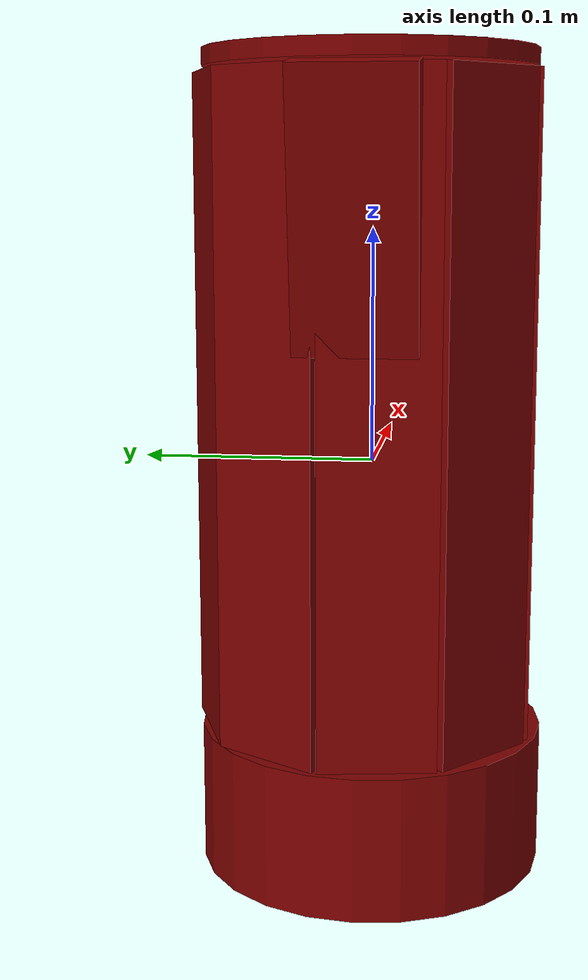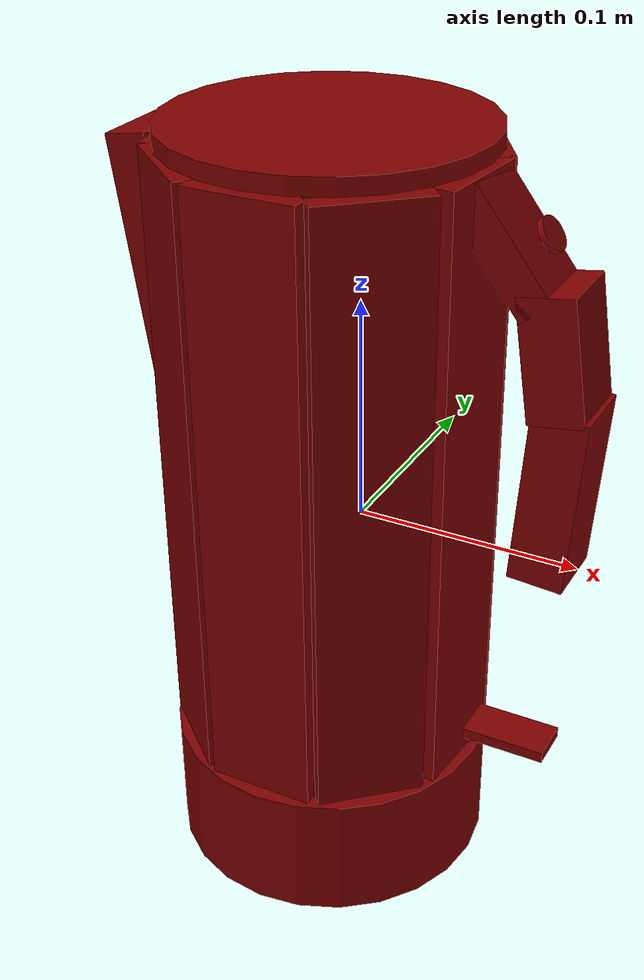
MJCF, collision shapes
<?xml version='1.0' encoding='UTF-8'?>
<mujoco model="model">
  <option timestep="0.002" gravity="0.0 0.0 -9.81"/>
  <compiler angle="radian"/>
  <asset>
    <mesh file="visuals/button_lid.obj" name="button_lid_vis"/>
    <mesh file="visuals/Body001.obj" name="Body001_vis"/>
    <mesh file="visuals/kettle_main.obj" name="kettle_main_vis"/>
    <mesh file="visuals/lid.obj" name="lid_vis"/>
    <mesh file="visuals/switch.obj" name="switch_vis"/>
    <texture file="visuals/T_BC001.png" name="Body001_material" type="2d"/>
    <material name="Body001_material" rgba="1 1 1 1.0" texture="Body001_material" shininess="0.5" specular="0.3103448502657381"/>
    <texture file="visuals/T_BC001.png" name="kettle_main_material" type="2d"/>
    <material name="kettle_main_material" rgba="1 1 1 1.0" texture="kettle_main_material" shininess="0.5" specular="0.3103448502657381"/>
    <texture file="visuals/T_BC001.png" name="button_lid_material" type="2d"/>
    <material name="button_lid_material" rgba="1 1 1 1.0" texture="button_lid_material" shininess="0.5" specular="0.3103448502657381"/>
    <texture file="visuals/T_BC001.png" name="lid_material" type="2d"/>
    <material name="lid_material" rgba="1 1 1 1.0" texture="lid_material" shininess="0.5" specular="0.3103448502657381"/>
    <texture file="visuals/T_BC001.png" name="switch_material" type="2d"/>
    <material name="switch_material" rgba="1 1 1 1.0" texture="switch_material" shininess="0.5" specular="0.3103448502657381"/>
  </asset>
  <default>
    <default class="visual">
      <geom conaffinity="0" contype="0" group="1" type="mesh"/>
    </default>
    <default class="collision">
      <geom group="0" rgba="0.5 0 0 0.5" density="1.0" solref="0.004 1" solimp="0.998 0.998 0.001"/>
    </default>
    <default class="spawn">
      <geom group="0" rgba="1 1 1 0.5" contype="0" conaffinity="0"/>
      <site group="0" rgba="1 1 1 0.5"/>
    </default>
    <default class="region">
      <geom group="1" conaffinity="0" contype="0" rgba="0 1 0 0" mass="0"/>
    </default>
  </default>
  <worldbody>
    <body>
      <body name="object">
        <geom mesh="Body001_vis" type="mesh" solimp="0.998 0.998 0.001" solref="0.001 1" friction="0.95 0.3 0.1" class="visual" material="Body001_material"/>
        <geom type="cylinder" pos="-0.014147056266665459 -0.0014596912078559399 -0.1420055478811264" size="0.07333151251077652 0.030249718576669693" quat="1.0 0.0 0.0 0.0" class="collision"/>
        <body name="kettle_main">
          <geom mesh="kettle_main_vis" type="mesh" solimp="0.998 0.998 0.001" solref="0.001 1" friction="0.95 0.3 0.1" class="visual" material="kettle_main_material"/>
          <geom type="box" pos="-0.014659987762570381 -0.0649634450674057 0.02637583017349243" size="0.023964185267686844 0.00452610244974494 0.13681364059448242" quat="1.0 0.0 0.0 0.0" class="collision"/>
          <geom type="box" pos="-0.05734682083129883 -0.048654280602931976 0.02637583017349243" size="0.023964185267686844 0.004526099190115929 0.13681364059448242" quat="0.351702481508255 0.0 0.0 0.9361118674278259" class="collision"/>
          <geom type="box" pos="-0.07854617387056351 -0.009625241160392761 0.02637583017349243" size="0.023964187130331993 0.004526099655777216 0.13681364059448242" quat="0.6505151391029358 0.0 0.0 0.7594932913780212" class="collision"/>
          <geom type="box" pos="-0.06978107988834381 0.03379485756158829 0.02637583017349243" size="0.023964185267686844 0.004526099190115929 0.13681364059448242" quat="0.8704730272293091 0.0 0.0 0.4922161400318146" class="collision"/>
          <geom type="box" pos="-0.036906998604536057 0.060903653502464294 0.02637583017349243" size="0.023964183405041695 0.004526098724454641 0.13681364059448242" quat="0.9837532043457031 0.0 0.0 0.17952613532543182" class="collision"/>
          <geom type="box" pos="0.006459015421569347 0.06155899167060852 0.02637583017349243" size="0.023964185267686844 0.004526099190115929 0.13681364059448242" quat="0.9872539043426514 0.0 0.0 -0.1591530293226242" class="collision"/>
          <geom type="box" pos="0.04121389985084534 0.03374524414539337 0.02637583017349243" size="0.023964185267686844 0.004526099190115929 0.13681364059448242" quat="0.8729791641235352 0.0 0.0 -0.48775753378868103" class="collision"/>
          <geom type="box" pos="0.050294194370508194 -0.006938675884157419 0.02637583017349243" size="0.023964185267686844 0.004526099190115929 0.13681364059448242" quat="0.6703444719314575 0.0 0.0 -0.742050051689148" class="collision"/>
          <geom type="box" pos="0.028762949630618095 -0.04864233359694481 0.02637583017349243" size="0.023964185267686844 0.004526099190115929 0.13681364059448242" quat="0.35703277587890625 0.0 0.0 -0.9340918660163879" class="collision"/>
          <geom class="collision" type="box" pos="0.06422605365514755 -0.00040946900844573975 0.13655079901218414" size="0.026267927139997482 0.015525726601481438 0.007936660200357437" quat="0.8977532386779785 -2.6406252739974434e-09 0.4404987394809723 6.135578711763401e-09" name="handle_2"/>
          <geom class="collision" type="box" pos="0.0873926654458046 -0.00040946900844573975 0.09729832410812378" size="0.02626792900264263 0.015525727532804012 0.01201306190341711" quat="0.7575722336769104 0.0 0.6527513861656189 0.0" name="handle_1"/>
          <geom class="collision" type="box" pos="0.09007710963487625 -0.00040946900844573975 0.03659379482269287" size="0.03920470178127289 0.015525727532804012 0.012013060972094536" quat="0.6807309985160828 0.0 0.7325335144996643 0.0" name="handle_main"/>
          <geom type="box" pos="-0.08403682708740234 -0.0013011693954467773 0.10929455608129501" size="0.053924139589071274 0.024153606966137886 0.00934384111315012" quat="0.7575722336769104 0.0 0.6527513861656189 0.0" class="collision"/>
          <geom type="cylinder" pos="-0.013485543429851532 0.00044968375004827976 -0.10658633708953857" size="0.0687592625617981 0.00413012970238924" quat="1.0 0.0 0.0 0.0" class="collision"/>
          <body name="button_lid">
            <joint axis="-0.8191520571708679 0.0 -0.5735763907432556" pos="0.07819373160600662 -0.0005655116401612759 0.14140471816062927" limited="true" name="button_lid_joint" range="0.0 0.002" type="slide" damping="1" frictionloss="1" armature=".01" stiffness="0.05" springref="-1"/>
            <geom mesh="button_lid_vis" type="mesh" solimp="0.998 0.998 0.001" solref="0.001 1" friction="0.95 0.3 0.1" class="visual" material="button_lid_material"/>
            <geom class="collision" type="cylinder" pos="0.07893180102109909 -0.0005655116401612759 0.1419215202331543" size="0.007331433705985546 0.0012985486537218094" quat="0.8870108723640442 5.279055763764227e-15 0.46174854040145874 6.20400086859263e-08" name="button_lid_main"/>
          </body>
          <body name="lid">
            <joint axis="0.0 1.0 0.0" pos="0.05319250002503395 0.0002991675864905119 0.16428445279598236" limited="true" name="lid_joint" range="0.0 1.5707963267948966" type="hinge" damping="1" frictionloss="0.1" armature=".01" stiffness="0.05" springref="-5"/>
            <geom mesh="lid_vis" type="mesh" solimp="0.998 0.998 0.001" solref="0.001 1" friction="0.95 0.3 0.1" class="visual" material="lid_material"/>
            <geom class="collision" type="cylinder" pos="-0.014223458245396614 0.0002246946096420288 0.16849210858345032" size="0.06849019229412079 0.003672220977023244" quat="1.0 0.0 0.0 0.0" name="lid_main"/>
          </body>
          <body name="switch">
            <joint axis="0.0 0.0 -1.0" pos="0.06497011333703995 -0.0031266380101442337 -0.09344106912612915" limited="true" name="switch_joint" range="0.0 0.005" type="slide" damping="1" frictionloss="1" armature=".01" stiffness="0.05" springref="-1"/>
            <geom mesh="switch_vis" type="mesh" solimp="0.998 0.998 0.001" solref="0.001 1" friction="0.95 0.3 0.1" class="visual" material="switch_material"/>
            <geom class="collision" type="box" pos="0.07730298489332199 -0.0031266361474990845 -0.09344106912612915" size="0.018839729949831963 0.01004140917211771 0.002512486884370446" quat="1.0 0.0 0.0 0.0" name="switch_main"/>
          </body>
        </body>
        <geom class="region" name="reg_main" type="box" pos="0.0 0.0 0.0" size="0.10309974646568298 0.07976776903867722 0.17243425345420837"/>
      </body>
    </body>
  </worldbody>
  <actuator>
    <motor name="button_lid_joint_actuator" joint="button_lid_joint" gear="0.5"/>
    <motor name="lid_joint_actuator" joint="lid_joint" gear="0.5"/>
    <motor name="switch_joint_actuator" joint="switch_joint" gear="0.5"/>
  </actuator>
</mujoco>
